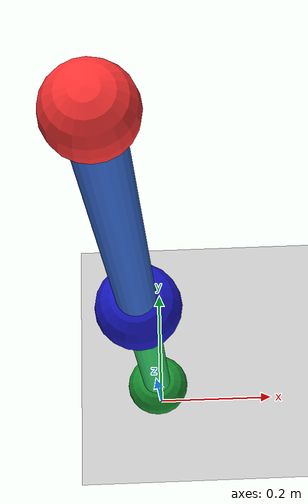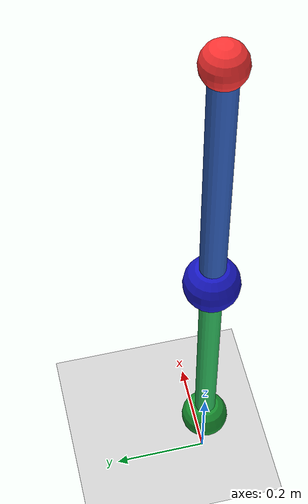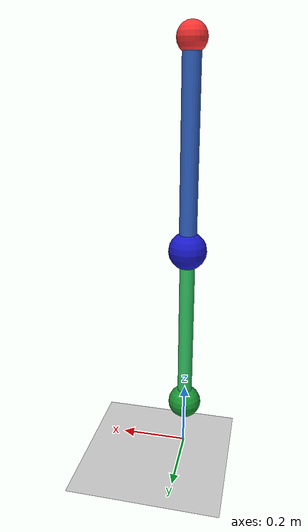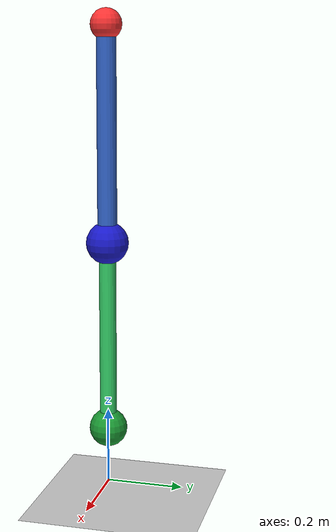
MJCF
<mujoco model="double_pendulum">
  <compiler angle="radian"/>
  <option timestep="0.005" gravity="0 0 -9.81"/>

  <visual>
    <global offwidth="1280" offheight="720"/>
  </visual>

  <worldbody>
    <light name="top_light" pos="0 0 3"/>

    <geom name="ground" type="plane" size="5 5 0.1" rgba="0.8 0.8 0.8 1"/>

    <geom name="pivot_marker"
          type="sphere"
          pos="0 0 1.2"
          size="0.04"
          rgba="1.0 0.2 0.2 1"
          contype="0"
          conaffinity="0"/>

    <body name="link1" pos="0 0 1.2">
      <joint name="shoulder_hinge"
             type="hinge"
             axis="0 1 0"
             pos="0 0 0"
             damping="0.05"
             armature="0.01"
             limited="true"
             range="-2.8 2.8"/>

      <geom name="link1_rod"
            type="capsule"
            fromto="0 0 0 0 0 -0.55"
            size="0.025"
            density="500"
            rgba="0.2 0.4 0.8 1"/>

      <geom name="link1_bob"
            type="sphere"
            pos="0 0 -0.55"
            size="0.055"
            mass="0.4"
            rgba="0.1 0.1 0.8 1"/>

      <geom name="elbow_marker"
            type="sphere"
            pos="0 0 -0.55"
            size="0.035"
            rgba="1.0 0.6 0.1 1"
            contype="0"
            conaffinity="0"/>

      <body name="link2" pos="0 0 -0.55">
        <joint name="elbow_hinge"
               type="hinge"
               axis="0 1 0"
               pos="0 0 0"
               damping="0.03"
               armature="0.005"
               limited="true"
               range="-2.8 2.8"/>

        <geom name="link2_rod"
              type="capsule"
              fromto="0 0 0 0 0 -0.50"
              size="0.022"
              density="450"
              rgba="0.2 0.8 0.4 1"/>

        <geom name="link2_bob"
              type="sphere"
              pos="0 0 -0.50"
              size="0.05"
              mass="0.3"
              rgba="0.1 0.6 0.2 1"/>

        <!-- IMU mounted at the end-effector (link2 tip) -->
        <site name="imu_site" pos="0 0 -0.50" size="0.01" rgba="1 1 0 1"/>
      </body>
    </body>
  </worldbody>

  <actuator>
    <motor name="shoulder_motor"
           joint="shoulder_hinge"
           gear="1"
           ctrllimited="true"
           ctrlrange="-2.0 2.0"/>

    <motor name="elbow_motor"
           joint="elbow_hinge"
           gear="1"
           ctrllimited="true"
           ctrlrange="-1.5 1.5"/>
  </actuator>

  <sensor>
    <framequat     name="imu_quat" objtype="site" objname="imu_site"/>
    <gyro          name="imu_gyro" site="imu_site"/>
    <accelerometer name="imu_acc"  site="imu_site"/>
  </sensor>

  <keyframe>
    <key name="home"      qpos="0.0 0.0"  qvel="0.0 0.0"  ctrl="0.0 0.0"/>
    <key name="wide_open" qpos="0.8 -0.8" qvel="0.0 0.0"  ctrl="0.0 0.0"/>
    <key name="folded"    qpos="1.2 1.0"  qvel="0.0 0.0"  ctrl="0.0 0.0"/>
  </keyframe>
</mujoco>
